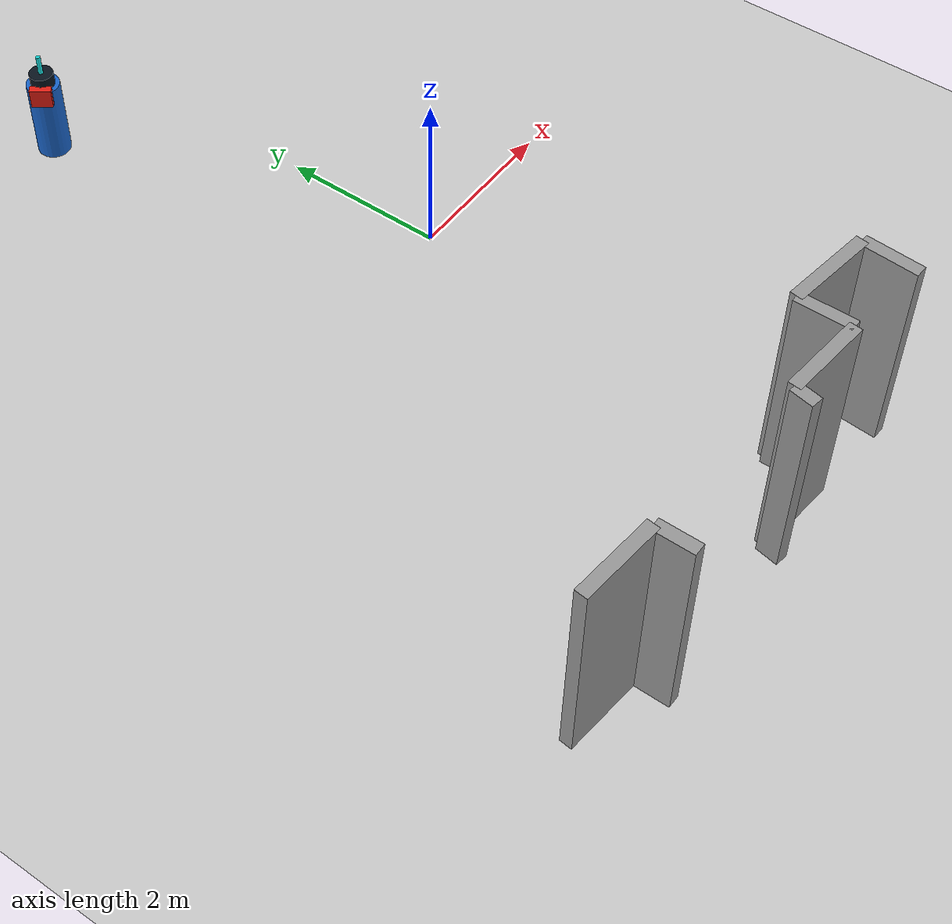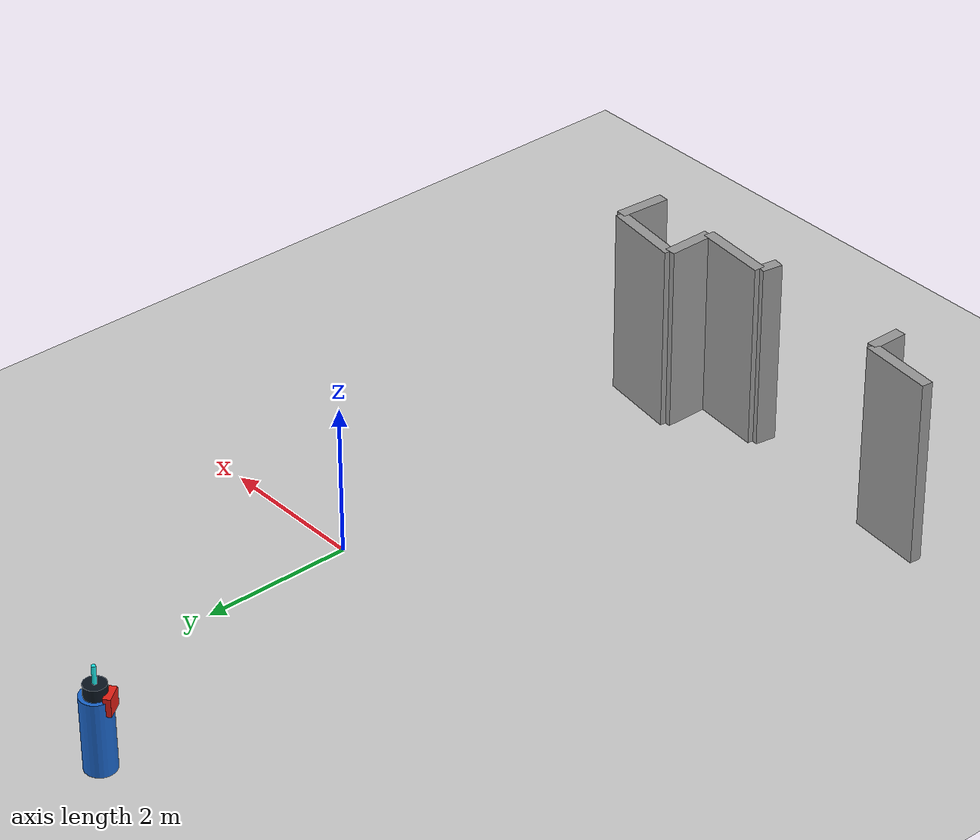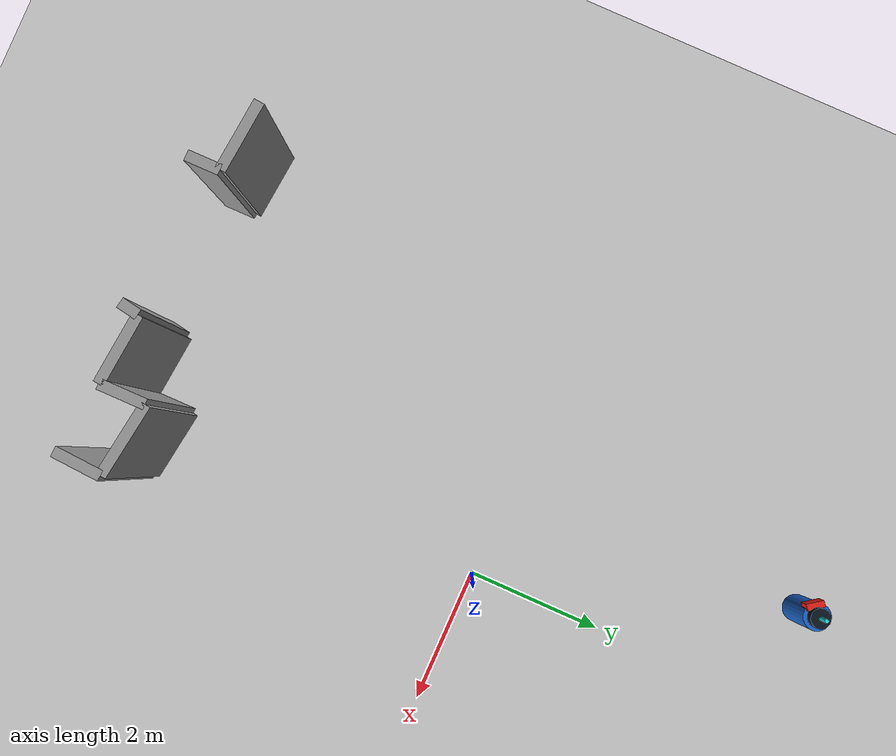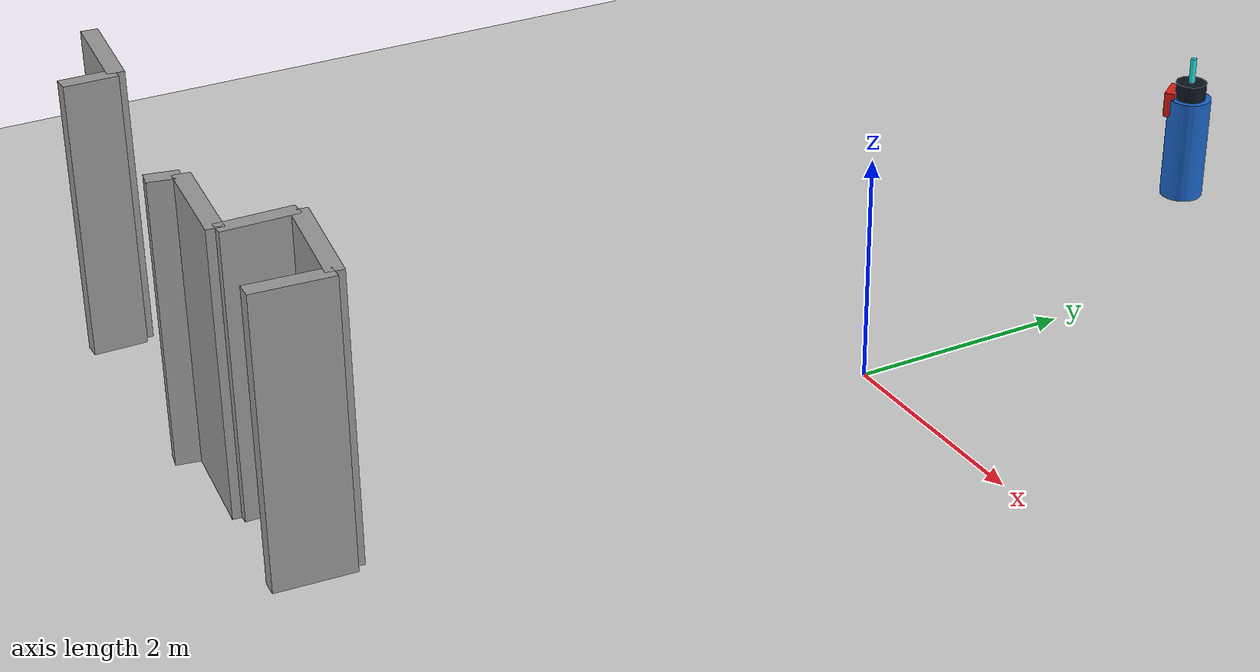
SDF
<sdf version="1.7">
 <world name="default">
  <plugin name="socnav_plugin" filename="libSocNavPlugin.so">
   <robot_name>robot</robot_name>
   <trajectory_file>/home/hunav_gz_classic_ws/SocNav3_trajectories/src3/000001045.json</trajectory_file>
   <human_slots>2</human_slots>
  </plugin>
  <light name="sun" type="directional">
   <pose>0 0 10 0 -0 0</pose>
   <diffuse>0.8 0.8 0.8 1</diffuse>
   <specular>0.2 0.2 0.2 1</specular>
   <attenuation>
    <range>1000</range>
    <constant>0.9</constant>
    <linear>0.01</linear>
    <quadratic>0.001</quadratic>
   </attenuation>
   <direction>-0.5 0.1 -0.9</direction>
   <spot><inner_angle>0</inner_angle><outer_angle>0</outer_angle><falloff>0</falloff></spot>
  </light>
  <model name="ground_plane">
   <static>1</static>
   <link name="link">
    <collision name="collision">
     <geometry><plane><normal>0 0 1</normal><size>100 100</size></plane></geometry>
     <surface><friction><ode><mu>100</mu><mu2>50</mu2></ode></friction></surface>
    </collision>
    <visual name="visual">
     <cast_shadows>0</cast_shadows>
     <geometry><plane><normal>0 0 1</normal><size>100 100</size></plane></geometry>
     <material>
      <script><uri>file://media/materials/scripts/kitchen.material</uri><name>Kitchen/CounterTop_H</name></script>
     </material>
    </visual>
   </link>
  </model>
  <gravity>0 0 -9.8</gravity>
  <magnetic_field>6e-06 2.3e-05 -4.2e-05</magnetic_field>
  <atmosphere type="adiabatic"/>
  <physics type="ode">
   <max_step_size>0.001</max_step_size>
   <real_time_factor>1</real_time_factor>
   <real_time_update_rate>1000</real_time_update_rate>
  </physics>
  <scene><ambient>0.4 0.4 0.4 1</ambient><background>0.7 0.7 0.7 1</background><shadows>1</shadows></scene>
  <audio><device>default</device></audio>
  <spherical_coordinates>
   <surface_model>EARTH_WGS84</surface_model>
   <latitude_deg>0</latitude_deg>
   <longitude_deg>0</longitude_deg>
   <elevation>0</elevation>
   <heading_deg>0</heading_deg>
  </spherical_coordinates>
  <model name="robot">
   <pose>-1.4594671931528915 4.596414744847968 0.5 0 0 -2.5115339125094844</pose>
   <link name="link">
    <collision name="collision">
     <geometry><cylinder><radius>0.2</radius><length>1.0</length></cylinder></geometry>
    </collision>
    <visual name="visual">
     <geometry><cylinder><radius>0.2</radius><length>1.0</length></cylinder></geometry>
     <material><ambient>0.1 0.4 0.8 1</ambient><diffuse>0.1 0.4 0.8 1</diffuse></material>
    </visual>
    <visual name="robot_top">
     <pose>0 0 0.58 0 0 0</pose>
     <geometry><cylinder><radius>0.144</radius><length>0.16</length></cylinder></geometry>
     <material><ambient>0.04 0.08 0.12 1</ambient><diffuse>0.04 0.08 0.12 1</diffuse></material>
    </visual>
    <visual name="robot_front">
     <pose>0.168 0 0.44 0 0 0</pose>
     <geometry><box><size>0.096 0.256 0.24</size></box></geometry>
     <material><ambient>0.9 0.12 0.08 1</ambient><diffuse>0.9 0.12 0.08 1</diffuse></material>
    </visual>
    <visual name="robot_sensor">
     <pose>0 0 0.78 0 0 0</pose>
     <geometry><cylinder><radius>0.028000000000000004</radius><length>0.24</length></cylinder></geometry>
     <material><ambient>0.1 0.9 0.9 1</ambient><diffuse>0.1 0.9 0.9 1</diffuse></material>
    </visual>
   </link>
  </model>
  <model name="simple_world_test">
   <link name="Wall_0">
    <collision name="Wall_0_Collision">
     <geometry><box><size>1.0049875621120894 0.15 2.5</size></box></geometry>
     <pose>0 0 1.25 0 -0 0</pose>
    </collision>
    <visual name="Wall_0_Visual">
     <pose>0 0 1.25 0 -0 0</pose>
     <geometry><box><size>1.0049875621120894 0.15 2.5</size></box></geometry>
     <material>
      <script><uri>file://media/materials/scripts/gazebo.material</uri><name>Gazebo/Grey</name></script>
      <ambient>1 1 1 1</ambient>
     </material>
     <meta><layer>0</layer></meta>
    </visual>
    <pose>-4.105182699600789 -5.043281582318703 0 0 -0 -0.09966865249116164</pose>
   </link>
   <link name="Wall_1">
    <collision name="Wall_1_Collision">
     <geometry><box><size>0.4725918000957092 0.15 2.5</size></box></geometry>
     <pose>0 0 1.25 0 -0 0</pose>
    </collision>
    <visual name="Wall_1_Visual">
     <pose>0 0 1.25 0 -0 0</pose>
     <geometry><box><size>0.4725918000957092 0.15 2.5</size></box></geometry>
     <material>
      <script><uri>file://media/materials/scripts/gazebo.material</uri><name>Gazebo/Grey</name></script>
      <ambient>1 1 1 1</ambient>
     </material>
     <meta><layer>0</layer></meta>
    </visual>
    <pose>-3.6051826996007885 -5.329577482366558 0 0 -0 -1.5707963267948966</pose>
   </link>
   <link name="Wall_2">
    <collision name="Wall_2_Collision">
     <geometry><box><size>0.27706081596501775 0.15 2.5</size></box></geometry>
     <pose>0 0 1.25 0 -0 0</pose>
    </collision>
    <visual name="Wall_2_Visual">
     <pose>0 0 1.25 0 -0 0</pose>
     <geometry><box><size>0.27706081596501775 0.15 2.5</size></box></geometry>
     <material>
      <script><uri>file://media/materials/scripts/gazebo.material</uri><name>Gazebo/Grey</name></script>
      <ambient>1 1 1 1</ambient>
     </material>
     <meta><layer>0</layer></meta>
    </visual>
    <pose>-1.5299637723367623 -5.4295774823665575 0 0 -0 1.3909428270024193</pose>
   </link>
   <link name="Wall_3">
    <collision name="Wall_3_Collision">
     <geometry><box><size>1.004987562112089 0.15 2.5</size></box></geometry>
     <pose>0 0 1.25 0 -0 0</pose>
    </collision>
    <visual name="Wall_3_Visual">
     <pose>0 0 1.25 0 -0 0</pose>
     <geometry><box><size>1.004987562112089 0.15 2.5</size></box></geometry>
     <material>
      <script><uri>file://media/materials/scripts/gazebo.material</uri><name>Gazebo/Grey</name></script>
      <ambient>1 1 1 1</ambient>
     </material>
     <meta><layer>0</layer></meta>
    </visual>
    <pose>-1.0051826996007889 -5.343281582318703 0 0 -0 -0.09966865249116168</pose>
   </link>
   <link name="Wall_4">
    <collision name="Wall_4_Collision">
     <geometry><box><size>0.6499999999999995 0.15 2.5</size></box></geometry>
     <pose>0 0 1.25 0 -0 0</pose>
    </collision>
    <visual name="Wall_4_Visual">
     <pose>0 0 1.25 0 -0 0</pose>
     <geometry><box><size>0.6499999999999995 0.15 2.5</size></box></geometry>
     <material>
      <script><uri>file://media/materials/scripts/gazebo.material</uri><name>Gazebo/Grey</name></script>
      <ambient>1 1 1 1</ambient>
     </material>
     <meta><layer>0</layer></meta>
    </visual>
    <pose>-0.5051826996007889 -5.068281582318702 0 0 -0 1.5707963267948966</pose>
   </link>
   <link name="Wall_5">
    <collision name="Wall_5_Collision">
     <geometry><box><size>1.0606601717798214 0.15 2.5</size></box></geometry>
     <pose>0 0 1.25 0 -0 0</pose>
    </collision>
    <visual name="Wall_5_Visual">
     <pose>0 0 1.25 0 -0 0</pose>
     <geometry><box><size>1.0606601717798214 0.15 2.5</size></box></geometry>
     <material>
      <script><uri>file://media/materials/scripts/gazebo.material</uri><name>Gazebo/Grey</name></script>
      <ambient>1 1 1 1</ambient>
     </material>
     <meta><layer>0</layer></meta>
    </visual>
    <pose>0.019817300399211257 -4.818281582318702 0 0 -0 -0.14189705460416338</pose>
   </link>
   <link name="Wall_6">
    <collision name="Wall_6_Collision">
     <geometry><box><size>0.6740847915001429 0.15 2.5</size></box></geometry>
     <pose>0 0 1.25 0 -0 0</pose>
    </collision>
    <visual name="Wall_6_Visual">
     <pose>0 0 1.25 0 -0 0</pose>
     <geometry><box><size>0.6740847915001429 0.15 2.5</size></box></geometry>
     <material>
      <script><uri>file://media/materials/scripts/gazebo.material</uri><name>Gazebo/Grey</name></script>
      <ambient>1 1 1 1</ambient>
     </material>
     <meta><layer>0</layer></meta>
    </visual>
    <pose>0.5223975737293544 -5.229577482366557 0 0 -0 -1.6373644905707205</pose>
   </link>
   <static>1</static>
  </model>
 </world>
</sdf>
